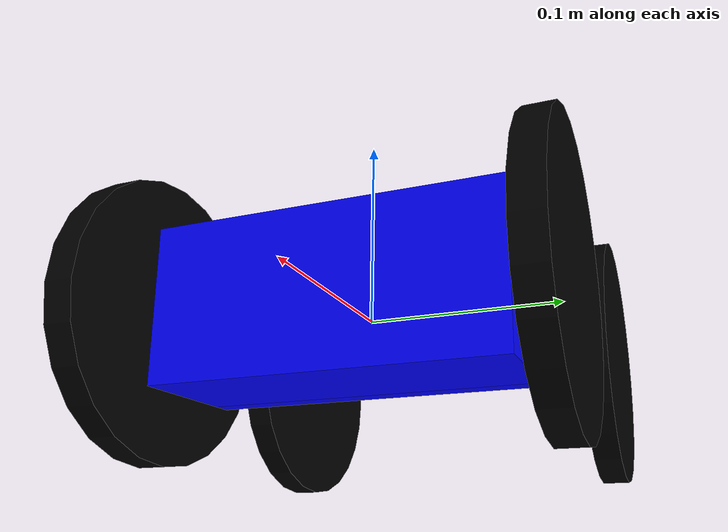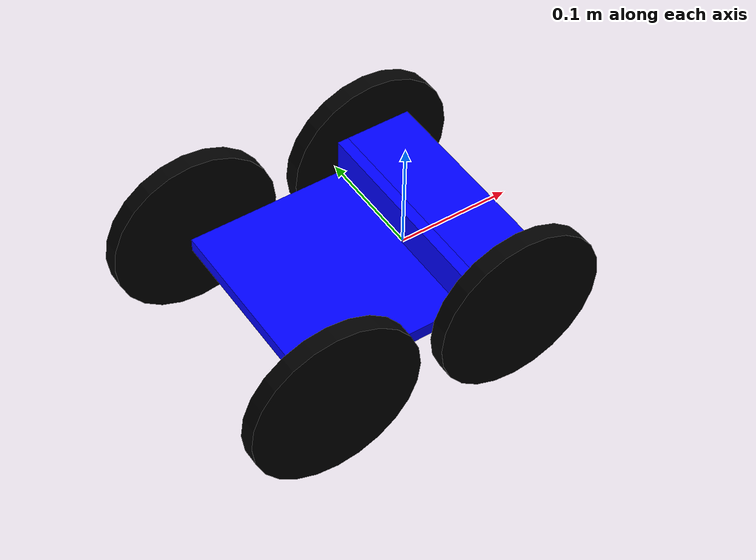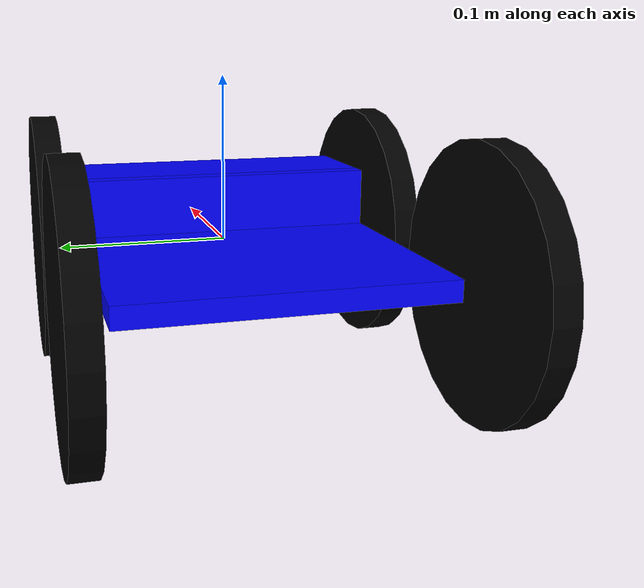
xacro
<?xml version="1.0"?>

<robot name="hybrid_robotv0_3" xmlns:xacro="http://ros.org/wiki/xacro">
  <xacro:include filename="$(find hybrid_jumping_robot)/urdf/material.xacro"/>
  <xacro:include filename="$(find hybrid_jumping_robot)/urdf/plugins_v2.gazebo.xacro"/>
  <xacro:include filename="$(find hybrid_jumping_robot)/urdf/macro.xacro"/>
  <xacro:include filename="$(find hybrid_jumping_robot)/urdf/transmission_v2.xacro"/>

  <!-- Wheels -->
  <xacro:property name="wheel_r" value="0.075"/>
  <xacro:property name="wheel_width" value="0.015"/>
  <xacro:property name="front_wheel_mass" value="0.279"/>
  <xacro:property name="back_wheel_mass" value="0.09589"/>

  <!-- Body -->
  <xacro:property name="base_width" value="0.1772"/>
  <!-- High part -->
  <xacro:property name="base_high_height" value="0.0801"/>
  <xacro:property name="base_high_length" value="0.01"/>
  <xacro:property name="base_high_mass" value="0.017062817412333738"/>

  <!-- Short part -->
  <xacro:property name="base_short_height" value="0.012"/>
  <xacro:property name="base_short_length" value="0.14"/>
  <xacro:property name="base_short_mass" value="0.035787182587666264"/>

  <!-- Motor -->
  <xacro:property name="motor_base_length" value="0.0585"/>
  <xacro:property name="motor_base_width" value="${base_width}"/>
  <xacro:property name="motor_base_height" value="${base_high_height}"/>
  <xacro:property name="motor_base_mass" value="0.73466"/>

  <link name="base_high">
    <visual>
      <geometry>
        <box size="${base_high_length} ${base_width} ${base_high_height}"/>
      </geometry>
      <material name="blue"/>
    </visual>
    <collision>
      <geometry>
        <box size="${base_high_length} ${base_width} ${base_high_height}"/>
      </geometry>
    </collision>
    <xacro:box_inertial mass="${base_high_mass}" length="${base_high_length}" width="${base_width}"
                        height="${base_high_height}"/>
  </link>

  <link name="base_short">
    <visual>
      <geometry>
        <box size="${base_short_length} ${base_width} ${base_short_height}"/>
      </geometry>
      <material name="blue"/>
    </visual>
    <collision>
      <geometry>
        <box size="${base_short_length} ${base_width} ${base_short_height}"/>
      </geometry>
    </collision>
    <xacro:box_inertial mass="${base_short_mass}" length="${base_short_length}" width="${base_width}"
                        height="${base_short_height}"/>
  </link>

  <joint name="base_high_short" type="fixed">
    <axis xyz="1 0 0"/>
    <parent link="base_high"/>
    <child link="base_short"/>
    <origin xyz="${-(base_high_length+base_short_length)*0.5} 0 0"/>
  </joint>

  <link name="motor_base">
    <visual>
      <geometry>
        <box size="${motor_base_length} ${motor_base_width}  ${motor_base_height}"/>
      </geometry>
      <material name="blue"/>
    </visual>
    <collision>
      <geometry>
        <box size="${motor_base_length} ${motor_base_width}  ${motor_base_height}"/>
      </geometry>
    </collision>
    <inertial>
      <mass value="${motor_base_mass}"/>
<!--               ixy="${17082829.61/1000000000}"-->
<!--               ixz="${15751727.91/1000000000}"-->
<!--               iyy="${87803241.16/1000000000}"-->
<!--               iyz="${88582169.30/1000000000}"-->
      <inertia ixx="0.00308579"
               ixy="0.0"
               ixz="0.0"
               iyy="0.00059331"
               iyz="0.0"
               izz="0.00305473"/>
    </inertial>
  </link>

  <joint name="base_motor_base_joint" type="fixed">
    <axis xyz="1 0 0"/>
    <parent link="base_high"/>
    <child link="motor_base"/>
    <origin xyz="${motor_base_length*0.5+base_high_length*0.5} 0 0"/>
  </joint>

  <xacro:wheel position="front" side="right" parent="motor_base" wheel_r="${wheel_r}" wheel_width="${wheel_width}"
               base_length="${motor_base_length}" base_width="${base_width}" mass="${front_wheel_mass}"/>
  <xacro:wheel position="front" side="left" parent="motor_base" wheel_r="${wheel_r}" wheel_width="${wheel_width}"
               base_length="${motor_base_length}" base_width="${base_width}" mass="${front_wheel_mass}"/>
  <xacro:wheel position="back" side="right" parent="base_short" wheel_r="${wheel_r}" wheel_width="${wheel_width}"
               base_length="${base_short_length}" base_width="${base_width}" mass="${back_wheel_mass}"/>
  <xacro:wheel position="back" side="left" parent="base_short" wheel_r="${wheel_r}" wheel_width="${wheel_width}"
               base_length="${base_short_length}" base_width="${base_width}" mass="${back_wheel_mass}"/>
</robot>

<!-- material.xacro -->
<robot name="hybrid_robotv0_2" xmlns:xacro="http://ros.org/wiki/xacro">
  <material name="black">
      <color rgba="0 0 0 1"/>
  </material>

  <material name="red">
      <color rgba="1 0 0 1"/>
  </material>

  <material name="blue">
      <color rgba="0 0 1 1"/>
  </material>
</robot>

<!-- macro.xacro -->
<robot name="hybrid_robotv0_2" xmlns:xacro="http://ros.org/wiki/xacro">

    <xacro:macro name="wheel" params="position side parent wheel_r wheel_width base_length base_width mass">

        <link name="${position}_${side}_wheel">
            <visual>
                <geometry>
                    <cylinder radius="${wheel_r}" length="${wheel_width}"/>
                </geometry>
                <material name="black"/>
            </visual>
            <collision>
                <geometry>
                    <cylinder radius="${wheel_r}" length="${wheel_width}"/>
                </geometry>
            </collision>
            <xacro:if value="${position == 'back'}">
                <inertial>
                    <mass value="${mass}"/>
                    <inertia ixx="${181652.29/1000000000}"
                             ixy="0.0"
                             ixz="0.0"
                             iyy="${181652.29/1000000000}"
                             iyz="0.0"
                             izz="${361145.59/1000000000}"/>
                </inertial>
            </xacro:if>
            <xacro:if value="${position == 'front'}">
                <inertial>
                    <mass value="${mass}"/>
                    <inertia ixx="${528551.19/1000000000}"
                             ixy="0.0"
                             ixz="0.0"
                             iyy="${528551.19/1000000000}"
                             iyz="0.0"
                             izz="${1050820.37/1000000000}"/>
                </inertial>
            </xacro:if>

        </link>

        <xacro:property name="clear" value="0.009"/>

        <xacro:if value="${position == 'back'}">
            <joint name="${position}_${side}_wheel_joint" type="continuous">
                <xacro:property name="origin_x" value="${-(base_length/2-0.010)}"/>
                <xacro:property name="origin_y" value="${(base_width + wheel_width)/2 + clear}"/>
                <xacro:if value="${side == 'right'}">
                    <xacro:property name="origin_y" value="${-(base_width + wheel_width)/2 - clear}"/>
                </xacro:if>
                <axis xyz="0 0 1" rpy="0 0 0"/>
                <parent link="${parent}"/>
                <child link="${position}_${side}_wheel"/>
                <origin xyz="${origin_x} ${origin_y} 0" rpy="${pi/2} 0 0"/>
                <joint_properties damping="0.0" friction="0.0"/>
                <limit effort="0.0" velocity="100000.0"/>
            </joint>
        </xacro:if>
        <xacro:if value="${position == 'front'}">
            <joint name="${position}_${side}_wheel_joint" type="continuous">
                <xacro:property name="origin_x" value="${0}"/>
                <xacro:property name="origin_y" value="${(base_width + wheel_width)/2 + clear}"/>
                <xacro:if value="${side == 'right'}">
                    <xacro:property name="origin_y" value="${-(base_width + wheel_width)/2 - clear}"/>
                </xacro:if>
                <axis xyz="0 0 1" rpy="0 0 0"/>
                <parent link="${parent}"/>
                <child link="${position}_${side}_wheel"/>
                <origin xyz="${origin_x} ${origin_y} 0" rpy="${pi/2} 0 0"/>
                <limit effort="1000000" velocity="1000"/>
                <joint_properties damping="0.0" friction="10000.0"/>
            </joint>
        </xacro:if>

    </xacro:macro>
    <!--box_inertial makes it easier to implement mass and inertial for a box shape-->
    <xacro:macro name="box_inertial" params="mass length width height">
        <inertial>
            <mass value="${mass}"/>
            <inertia
                    ixx="${1/12*mass*(width*width+height*height)}"
                    ixy="0.0"
                    ixz="0.0"
                    iyy="${1/12*mass*(length*length+height*height)}"
                    iyz="0.0"
                    izz="${1/12*mass*(width*width+length*length)}"/>
        </inertial>
    </xacro:macro>
    <!--cylinder_inertial makes it easier to implement mass and inertial for a cylinder shape-->
    <xacro:macro name="cylinder_inertial" params="mass height radii">
        <inertial>
            <mass value="${mass}"/>
            <inertia
                    ixx="${1/12*mass*(3*radii*radii+height*height)}"
                    ixy="0.0"
                    ixz="0.0"
                    iyy="${1/12*mass*(3*radii*radii+height*height)}"
                    iyz="0.0"
                    izz="${0.5*mass*(radii*radii)}"/>
        </inertial>
    </xacro:macro>

</robot>
